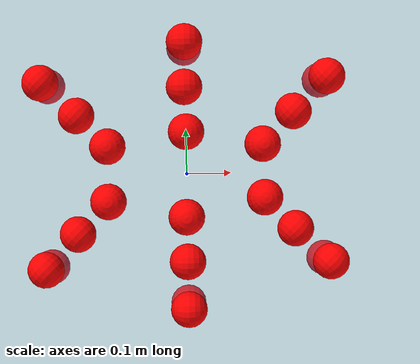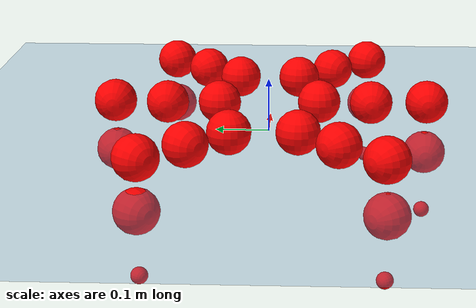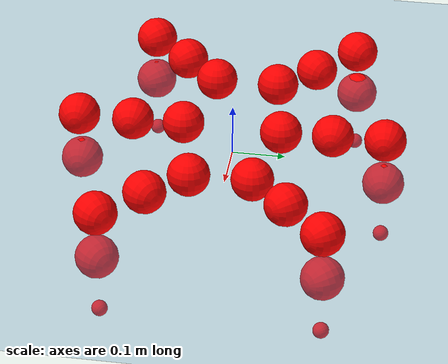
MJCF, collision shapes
<mujoco model="Golem">
  <compiler angle="radian" assetdir="assets" balanceinertia="true" inertiafromgeom="false"/>

  <option timestep="0.005" density="1.2" viscosity="2e-05"/>

  <size nkey="1"/>

  <visual>
    <quality shadowsize="8192"/>
    <map shadowclip="0.5"/>
  </visual>

  <default>
    <default class="/">
      <joint armature="0.01" damping="0.01" frictionloss="0.01"/>
      <geom contype="0" conaffinity="0" group="1" solref="-1000 -80"/>
      <site size="0.01 0.005 0.005" group="5"/>
      <general forcelimited="true" biastype="affine" gainprm="25" biasprm="0 -25 -0.5"/>
      <default class="visual">
        <geom type="mesh" group="2"/>
      </default>
      <default class="collision">
        <geom group="3"/>
      </default>
      <default class="foot">
        <geom size="0.01 0 0" condim="6" group="4" priority="1" solimp="0.015 1 0.01"/>
      </default>
      <default class="reward_collision_sphere">
        <geom group="5" rgba="1 0 0 1"/>
      </default>
    </default>
  </default>

  <asset>
    <texture type="skybox" colorspace="auto" name="//unnamed_texture_0" builtin="gradient" rgb1="0.95 0.95 0.95" rgb2="0.95 0.95 0.95" width="100" height="600"/>
    <texture type="2d" colorspace="auto" name="texplane" builtin="checker" rgb1="0.345 0.575 0.748" rgb2="0.345 0.575 0.748" markrgb="1 1 1" width="512" height="512"/>
    <material name="MatPlane" class="/" texture="texplane" texuniform="true" texrepeat="2 2" specular="0.9"/>
    <mesh name="body" class="/" file="body.stl" scale="0.001 0.001 0.001"/>
    <mesh name="coxa" class="/" file="coxa.stl" scale="0.001 0.001 0.001"/>
    <mesh name="femur" class="/" file="femur.stl" scale="0.001 0.001 0.001"/>
    <mesh name="tibia" class="/" file="tibia.stl" scale="0.001 0.001 0.001"/>
    <mesh name="tarsus" class="/" file="tarsus.stl" scale="0.001 0.001 0.001"/>
  </asset>

  <worldbody>
    <geom name="floor" class="/" size="100 100 0.125" type="plane" group="0" material="MatPlane"/>
    <light name="toplight_shadow" class="/" pos="0 0 5" dir="0.0990148 0.0990148 -0.990148" type="directional" ambient="0.04 0.04 0.04" diffuse="0.55 0.55 0.55" specular="0.12 0.12 0.12"/>
    <light name="toplight_fill" class="/" pos="0 0 5" dir="0.0990148 0.0990148 -0.990148" type="directional" castshadow="false" ambient="0.04 0.04 0.04" diffuse="0.3 0.3 0.3" specular="0.08 0.08 0.08"/>
    <body name="trunk" pos="-0.00179237 0.00200638 -0.00252423" quat="0.999999 0.000171671 0.000992294 0.000766606">
      <inertial pos="0.00055728 0.00227688 -0.00698584" quat="0.999947 -0.00279749 -0.00786665 0.00606016" mass="3.44676" diaginertia="0.0145797 0.00805189 0.00722752"/>
      <joint name="//unnamed_joint_0" type="free"/>
      <geom name="//unnamed_geom_1" class="/" pos="0 0 0.0602748" quat="1 0 0 0" type="mesh" rgba="0.9 0.9 0.9 1" mesh="body"/>
      <site name="imu" class="/" pos="0.144569 0.00844625 0.102568" size="0.00998076"/>
      <camera name="track" class="/" pos="0 -1.92278 0" quat="0.707107 0.707107 0 0" mode="trackcom"/>
      <camera name="ego_camera" class="/" pos="0.141836 0 0.0941794" quat="-0.5 -0.5 0.5 0.5"/>
      <body name="coxa_RR" pos="-0.193967 -0.0823531 0.0574563" quat="0.382599 0.000163121 0.000348766 -0.923915">
        <inertial pos="0.000216585 -0.00180233 0.000509775" quat="0.999991 -0.000703298 -0.00422238 0.000512117" mass="0.191568" diaginertia="0.0151382 0.00779566 0.00746357"/>
        <joint name="coxa_joint_RR" class="/" pos="0 0 0" axis="-0.0150018 0.0093441 -0.999844" range="-3.16567 3.13131" armature="0.0109546" damping="0" frictionloss="0.0101638"/>
        <geom name="//unnamed_geom_2" class="/" type="mesh" rgba="0.2 0.2 0.2 1" mesh="coxa"/>
        <geom name="//unnamed_geom_3" class="reward_collision_sphere" size="0.039923" pos="-0.0327313 0 0"/>
        <body name="femur_RR" pos="0.0642334 0.00144947 0.00108035" quat="0.500287 -0.500297 0.500025 0.499391">
          <inertial pos="0.0026023 -0.00107728 -0.00175469" quat="0.999994 0.00128267 0.00316089 -0.000675427" mass="0.195171" diaginertia="0.0152396 0.00819707 0.00767191"/>
          <joint name="femur_joint_RR" class="/" pos="0 0 0" axis="-0.00395124 0.00292018 -0.999988" range="-3.14354 3.19268" armature="0.00986085" damping="0" frictionloss="0.0112123"/>
          <geom name="//unnamed_geom_4" class="/" type="mesh" rgba="0.9 0.9 0.9 1" mesh="femur"/>
          <geom name="//unnamed_geom_5" class="reward_collision_sphere" size="0.039923"/>
          <body name="tibia_RR" pos="-0.00110399 -0.104537 0.00330437" quat="1.74959e-05 1 0.000122679 -0.000166376">
            <inertial pos="-0.00023756 0.00220369 -5.32586e-06" quat="0.999934 0.00902567 -0.0069486 -0.00152736" mass="0.199188" diaginertia="0.0154569 0.00836462 0.00768557"/>
            <joint name="tibia_joint_RR" class="/" pos="0 0 0" axis="-0.00605427 0.00261814 0.999978" range="-3.11513 3.08822" armature="0.0104806" damping="0.0178103" frictionloss="0.00865854"/>
            <geom name="//unnamed_geom_6" class="/" type="mesh" rgba="0.2 0.2 0.2 1" mesh="tibia"/>
            <geom name="//unnamed_geom_7" class="reward_collision_sphere" size="0.039923"/>
            <body name="tarsus_RR" pos="0.0978427 0.00264566 -0.00202284" quat="1 -0.000386179 -0.000107006 -0.000842627">
              <inertial pos="0.0654826 0.00130044 -0.00114011" quat="0.503314 0.496759 0.497462 0.502431" mass="0.193876" diaginertia="0.0146172 0.00815092 0.00730741"/>
              <joint name="tarsus_joint_RR" class="/" pos="0 0 0" axis="0.000306735 -9.51089e-05 1" range="-3.1642 3.10122" armature="0.00856921" damping="0.0116238" frictionloss="0.0100792"/>
              <geom name="//unnamed_geom_8" class="/" type="mesh" rgba="0.9 0.9 0.9 1" mesh="tarsus"/>
              <geom name="foot_1" class="foot" size="0.0107815" pos="0.122197 0 0" quat="0 -0.707107 0 0.707107"/>
              <geom name="//unnamed_geom_10" class="reward_collision_sphere" size="0.039923"/>
              <geom name="//unnamed_geom_11" class="reward_collision_sphere" size="0.0149711" pos="0.117287 0 0"/>
              <site name="foot_1" class="foot" pos="0.122197 0 0" quat="0 -0.707107 0 0.707107" size="0.00998076"/>
            </body>
          </body>
        </body>
      </body>
      <body name="coxa_RM" pos="-0.000291292 -0.129193 0.0611962" quat="0.70637 -0.00110459 -0.000836083 -0.707841">
        <inertial pos="0.00105115 -0.00080864 0.00061697" quat="1 5.33375e-05 -0.000127385 -0.000428276" mass="0.191275" diaginertia="0.0154641 0.00815374 0.00734753"/>
        <joint name="coxa_joint_RM" class="/" pos="0 0 0" axis="-0.00200714 -0.00788398 -0.999967" stiffness="0.00199522" range="-3.13182 3.15405" armature="0.0103478" damping="0.00368784" frictionloss="0.0113119"/>
        <geom name="//unnamed_geom_12" class="/" type="mesh" rgba="0.2 0.2 0.2 1" mesh="coxa"/>
        <geom name="//unnamed_geom_13" class="reward_collision_sphere" size="0.039923" pos="-0.0327313 0 0"/>
        <body name="femur_RM" pos="0.0647313 0.000566492 -0.00137283" quat="0.499483 -0.500077 0.50064 0.4998">
          <inertial pos="-0.00211422 -0.0018073 -0.00092499" quat="0.999909 0.00987717 8.50424e-05 -0.00913465" mass="0.202809" diaginertia="0.0159554 0.00833197 0.0077308"/>
          <joint name="femur_joint_RM" class="/" pos="0 0 0" axis="0.00249691 -0.00248387 -0.999994" stiffness="0.00438301" range="-3.1311 3.16863" armature="0.0112842" damping="0.0145894" frictionloss="0.00896385"/>
          <geom name="//unnamed_geom_14" class="/" type="mesh" rgba="0.9 0.9 0.9 1" mesh="femur"/>
          <geom name="//unnamed_geom_15" class="reward_collision_sphere" size="0.039923"/>
          <body name="tibia_RM" pos="-0.00167022 -0.103898 0.00082454" quat="0.000490372 1 0.000552886 0.000363208">
            <inertial pos="-0.00156051 -0.00321627 0.00057069" quat="0.999963 0.00403919 -0.00608123 0.00449479" mass="0.199529" diaginertia="0.0150854 0.00794155 0.00724719"/>
            <joint name="tibia_joint_RM" class="/" pos="0 0 0" axis="-0.00439271 0.00557329 0.999975" range="-3.14786 3.16849" armature="0.00863778" damping="0" frictionloss="0.0101205"/>
            <geom name="//unnamed_geom_16" class="/" type="mesh" rgba="0.2 0.2 0.2 1" mesh="tibia"/>
            <geom name="//unnamed_geom_17" class="reward_collision_sphere" size="0.039923"/>
            <body name="tarsus_RM" pos="0.0989874 -0.00139637 0.000309107" quat="1 -5.62173e-05 -0.000223628 9.55379e-05">
              <inertial pos="0.0647572 -0.000185363 0.00297846" quat="0.501687 0.499874 0.499255 0.499179" mass="0.190502" diaginertia="0.0154167 0.00803627 0.00712656"/>
              <joint name="tarsus_joint_RM" class="/" pos="0 0 0" axis="0.0129609 0.000754035 0.999916" range="-3.14714 3.14274" armature="0.010403" damping="0.00768663" frictionloss="0.00979798"/>
              <geom name="//unnamed_geom_18" class="/" type="mesh" rgba="0.9 0.9 0.9 1" mesh="tarsus"/>
              <geom name="foot_2" class="foot" size="0.0105304" pos="0.122197 0 0" quat="0 -0.707107 0 0.707107"/>
              <geom name="//unnamed_geom_20" class="reward_collision_sphere" size="0.039923"/>
              <geom name="//unnamed_geom_21" class="reward_collision_sphere" size="0.0149711" pos="0.117287 0 0"/>
              <site name="foot_2" class="foot" pos="0.122197 0 0" quat="0 -0.707107 0 0.707107" size="0.00998076"/>
            </body>
          </body>
        </body>
      </body>
      <body name="coxa_RF" pos="0.194714 -0.0801781 0.0594898" quat="0.923377 0.000682157 0.000105547 -0.383895">
        <inertial pos="-0.0022984 0.0016252 0.000389127" quat="0.999973 0.00279486 0.00396126 0.00548419" mass="0.196611" diaginertia="0.0147824 0.00813057 0.0073235"/>
        <joint name="coxa_joint_RF" class="/" pos="0 0 0" axis="0.00161272 -0.00211085 -0.999996" stiffness="0.00085893" range="-3.17827 3.18125" armature="0.0101721" damping="0.00228835" frictionloss="0.010334"/>
        <geom name="//unnamed_geom_22" class="/" type="mesh" rgba="0.2 0.2 0.2 1" mesh="coxa"/>
        <geom name="//unnamed_geom_23" class="reward_collision_sphere" size="0.039923" pos="-0.0327313 0 0"/>
        <body name="femur_RF" pos="0.0624888 -0.00227905 -0.000808865" quat="0.500023 -0.499973 0.500026 0.499978">
          <inertial pos="-0.000696299 -0.00160741 -0.000154895" quat="0.999912 -0.00683715 -0.0108409 -0.00341919" mass="0.196091" diaginertia="0.0145467 0.00787085 0.00694278"/>
          <joint name="femur_joint_RF" class="/" pos="0 0 0" axis="-0.0023326 0.0039929 -0.999989" stiffness="0.00341904" range="-3.14914 3.09283" armature="0.0101643" damping="0" frictionloss="0.00882774"/>
          <geom name="//unnamed_geom_24" class="/" type="mesh" rgba="0.9 0.9 0.9 1" mesh="femur"/>
          <geom name="//unnamed_geom_25" class="reward_collision_sphere" size="0.039923"/>
          <body name="tibia_RF" pos="0.000693969 -0.106106 0.00216866" quat="-0.000236193 1 0.000415193 -2.51793e-05">
            <inertial pos="-7.37787e-05 0.000355523 0.00277673" quat="0.999994 0.00280032 -0.00163983 -0.000966704" mass="0.193984" diaginertia="0.0144717 0.00806779 0.00717393"/>
            <joint name="tibia_joint_RF" class="/" pos="0 0 0" axis="-0.00534692 0.00979131 0.999938" range="-3.12828 3.17881" armature="0.00967821" damping="0.00787076" frictionloss="0.0109394"/>
            <geom name="//unnamed_geom_26" class="/" type="mesh" rgba="0.2 0.2 0.2 1" mesh="tibia"/>
            <geom name="//unnamed_geom_27" class="reward_collision_sphere" size="0.039923"/>
            <body name="tarsus_RF" pos="0.0956758 0.00062563 0.000959476" quat="1 -9.88858e-05 -0.000195504 5.01643e-05">
              <inertial pos="0.0633205 0.00225788 0.00247806" quat="0.498109 0.501318 0.501743 0.49882" mass="0.20485" diaginertia="0.0152582 0.00850631 0.00779983"/>
              <joint name="tarsus_joint_RF" class="/" pos="0 0 0" axis="0.0027208 0.00857591 0.99996" stiffness="0.028724" range="-3.13636 3.13016" armature="0.0111715" damping="0.0184446" frictionloss="0.0110045"/>
              <geom name="//unnamed_geom_28" class="/" type="mesh" rgba="0.9 0.9 0.9 1" mesh="tarsus"/>
              <geom name="foot_3" class="foot" size="0.0103367" pos="0.122197 0 0" quat="0 -0.707107 0 0.707107"/>
              <geom name="//unnamed_geom_30" class="reward_collision_sphere" size="0.039923"/>
              <geom name="//unnamed_geom_31" class="reward_collision_sphere" size="0.0149711" pos="0.117287 0 0"/>
              <site name="foot_3" class="foot" pos="0.122197 0 0" quat="0 -0.707107 0 0.707107" size="0.00998076"/>
            </body>
          </body>
        </body>
      </body>
      <body name="coxa_LR" pos="-0.193649 0.0847508 0.0561963" quat="0.383036 -0.000888259 -1.61204e-05 0.923733">
        <inertial pos="-0.000732064 -0.000354972 0.00153835" quat="0.999997 -0.000858098 -0.00169109 -0.00130532" mass="0.201706" diaginertia="0.0147278 0.00806251 0.0076099"/>
        <joint name="coxa_joint_LR" class="/" pos="0 0 0" axis="-0.0032213 -0.00799493 -0.999963" stiffness="0.00786761" range="-3.17705 3.18723" armature="0.0112133" damping="0" frictionloss="0.00998371"/>
        <geom name="//unnamed_geom_32" class="/" type="mesh" rgba="0.2 0.2 0.2 1" mesh="coxa"/>
        <geom name="//unnamed_geom_33" class="reward_collision_sphere" size="0.039923" pos="-0.0327313 0 0"/>
        <body name="femur_LR" pos="0.0631845 -0.00158114 0.000193611" quat="0.50042 -0.499139 0.499308 0.501129">
          <inertial pos="0.000948442 0.00344086 0.00142849" quat="1 1.48882e-05 0.000259972 -0.000204752" mass="0.19983" diaginertia="0.0157797 0.0082732 0.00761026"/>
          <joint name="femur_joint_LR" class="/" pos="0 0 0" axis="0.000332904 -0.000363811 1" range="-3.1621 3.14218" armature="0.009445" damping="0.0314597" frictionloss="0.0100902"/>
          <geom name="//unnamed_geom_34" class="/" type="mesh" rgba="0.9 0.9 0.9 1" mesh="femur"/>
          <geom name="//unnamed_geom_35" class="reward_collision_sphere" size="0.039923"/>
          <body name="tibia_LR" pos="-0.00380749 -0.106048 0.00279383" quat="-0.000317632 0.999999 -0.000654939 0.000691741">
            <inertial pos="0.00194603 -0.000284725 -0.00145022" quat="0.999994 0.000152228 0.00155745 0.00306917" mass="0.208446" diaginertia="0.0159206 0.00827468 0.00760659"/>
            <joint name="tibia_joint_LR" class="/" pos="0 0 0" axis="0.0145174 0.00586086 -0.999877" stiffness="0.00743251" range="-3.10014 3.11308" armature="0.0113461" damping="0" frictionloss="0.00994213"/>
            <geom name="//unnamed_geom_36" class="/" type="mesh" rgba="0.2 0.2 0.2 1" mesh="tibia"/>
            <geom name="//unnamed_geom_37" class="reward_collision_sphere" size="0.039923"/>
            <body name="tarsus_LR" pos="0.0947363 0.000404111 0.00310752" quat="1 -8.87026e-05 -7.37043e-05 0.000368812">
              <inertial pos="0.0610371 0.00224521 0.00120327" quat="0.501282 0.509993 0.494092 0.494466" mass="0.195445" diaginertia="0.0157862 0.00791028 0.00742465"/>
              <joint name="tarsus_joint_LR" class="/" pos="0 0 0" axis="0.00500224 -0.00415548 -0.999979" stiffness="0.00481268" range="-3.19081 3.10356" armature="0.0095213" damping="0.0122052" frictionloss="0.00912131"/>
              <geom name="//unnamed_geom_38" class="/" type="mesh" rgba="0.9 0.9 0.9 1" mesh="tarsus"/>
              <geom name="foot_4" class="foot" size="0.00880531" pos="0.122197 0 0" quat="0.707107 0 -0.707107 0"/>
              <geom name="//unnamed_geom_40" class="reward_collision_sphere" size="0.039923"/>
              <geom name="//unnamed_geom_41" class="reward_collision_sphere" size="0.0149711" pos="0.117287 0 0"/>
              <site name="foot_4" class="foot" pos="0.122197 0 0" quat="0.707107 0 -0.707107 0" size="0.00998076"/>
            </body>
          </body>
        </body>
      </body>
      <body name="coxa_LM" pos="0.00249211 0.12319 0.0579447" quat="0.707216 0.000217096 0.000144394 0.706997">
        <inertial pos="-0.00224893 -0.000828832 0.00287206" quat="0.999993 0.00353053 -0.000111663 -0.00156775" mass="0.192398" diaginertia="0.0154575 0.00790037 0.00715712"/>
        <joint name="coxa_joint_LM" class="/" pos="0 0 0" axis="0.00635774 -0.0138538 -0.999884" range="-3.15309 3.18742" armature="0.011246" damping="0.00430443" frictionloss="0.0107943"/>
        <geom name="//unnamed_geom_42" class="/" type="mesh" rgba="0.2 0.2 0.2 1" mesh="coxa"/>
        <geom name="//unnamed_geom_43" class="reward_collision_sphere" size="0.039923" pos="-0.0327313 0 0"/>
        <body name="femur_LM" pos="0.06528 0.00218963 -4.27856e-05" quat="0.499766 -0.500212 0.500018 0.500003">
          <inertial pos="0.000880306 -0.00198357 -0.00265964" quat="0.999997 -0.000817569 0.000663326 0.00219018" mass="0.206135" diaginertia="0.0157835 0.00802684 0.00719686"/>
          <joint name="femur_joint_LM" class="/" pos="0 0 0" axis="0.00125827 -0.000348366 0.999999" stiffness="0.0085417" range="-3.08662 3.15126" armature="0.00905585" damping="0.0140413" frictionloss="0.00945957"/>
          <geom name="//unnamed_geom_44" class="/" type="mesh" rgba="0.9 0.9 0.9 1" mesh="femur"/>
          <geom name="//unnamed_geom_45" class="reward_collision_sphere" size="0.039923"/>
          <body name="tibia_LM" pos="-0.00113321 -0.0988785 -0.00229231" quat="-4.60005e-06 1 9.28876e-05 6.09929e-05">
            <inertial pos="0.00154101 -0.000802914 0.000586575" quat="0.999984 -0.00274443 0.00483723 -0.000738351" mass="0.194596" diaginertia="0.0151908 0.00777558 0.00701499"/>
            <joint name="tibia_joint_LM" class="/" pos="0 0 0" axis="-0.00107038 0.0107736 -0.999941" stiffness="0.0123968" range="-3.12833 3.14161" armature="0.010332" damping="0.0107178" frictionloss="0.0099702"/>
            <geom name="//unnamed_geom_46" class="/" type="mesh" rgba="0.2 0.2 0.2 1" mesh="tibia"/>
            <geom name="//unnamed_geom_47" class="reward_collision_sphere" size="0.039923"/>
            <body name="tarsus_LM" pos="0.096435 -0.00019048 -0.0007809" quat="1 -0.000158896 7.75837e-05 -0.000318026">
              <inertial pos="0.0665043 -3.15086e-05 0.00208248" quat="0.497834 0.4968 0.500615 0.504714" mass="0.194589" diaginertia="0.0147015 0.00784954 0.0073069"/>
              <joint name="tarsus_joint_LM" class="/" pos="0 0 0" axis="0.00635953 -0.0122483 -0.999905" range="-3.12325 3.12841" armature="0.00974538" damping="0.014083" frictionloss="0.0094527"/>
              <geom name="//unnamed_geom_48" class="/" type="mesh" rgba="0.9 0.9 0.9 1" mesh="tarsus"/>
              <geom name="foot_5" class="foot" size="0.00995474" pos="0.122197 0 0" quat="0.707107 0 -0.707107 0"/>
              <geom name="//unnamed_geom_50" class="reward_collision_sphere" size="0.039923"/>
              <geom name="//unnamed_geom_51" class="reward_collision_sphere" size="0.0149711" pos="0.117287 0 0"/>
              <site name="foot_5" class="foot" pos="0.122197 0 0" quat="0.707107 0 -0.707107 0" size="0.00998076"/>
            </body>
          </body>
        </body>
      </body>
      <body name="coxa_LF" pos="0.192545 0.0832638 0.0599233" quat="0.923913 -0.0003155 -0.00107897 0.3826">
        <inertial pos="-0.001011 0.000193234 -0.000555296" quat="0.999996 -0.0017798 -0.00234425 -2.8563e-05" mass="0.195818" diaginertia="0.0157492 0.00810186 0.00731524"/>
        <joint name="coxa_joint_LF" class="/" pos="0 0 0" axis="-0.000202621 8.33987e-05 -1" stiffness="0.00435273" range="-3.17578 3.13903" armature="0.00995453" damping="0.00445289" frictionloss="0.00835564"/>
        <geom name="//unnamed_geom_52" class="/" type="mesh" rgba="0.2 0.2 0.2 1" mesh="coxa"/>
        <geom name="//unnamed_geom_53" class="reward_collision_sphere" size="0.039923" pos="-0.0327313 0 0"/>
        <body name="femur_LF" pos="0.0652029 0.00121946 -0.00119362" quat="0.49931 -0.500611 0.500064 0.500014">
          <inertial pos="0.00293839 0.00131229 -0.00336641" quat="0.999998 0.00080656 0.00192619 -0.00041649" mass="0.192404" diaginertia="0.0151529 0.00831284 0.0073249"/>
          <joint name="femur_joint_LF" class="/" pos="0 0 0" axis="0.000116999 0.00192738 0.999998" stiffness="0.00782231" range="-3.14694 3.1387" armature="0.010805" damping="0.0179776" frictionloss="0.0112168"/>
          <geom name="//unnamed_geom_54" class="/" type="mesh" rgba="0.9 0.9 0.9 1" mesh="femur"/>
          <geom name="//unnamed_geom_55" class="reward_collision_sphere" size="0.039923"/>
          <body name="tibia_LF" pos="0.00266001 -0.106623 -0.000750266" quat="-0.000416208 1 -0.000415639 0.00058701">
            <inertial pos="-0.00234576 0.00294547 -0.00104807" quat="1 -0.000635443 -0.000320085 1.60979e-05" mass="0.214324" diaginertia="0.0166224 0.00860945 0.00799266"/>
            <joint name="tibia_joint_LF" class="/" pos="0 0 0" axis="0.000157555 -0.0015955 -0.999999" range="-3.12293 3.16414" armature="0.0105479" damping="0.00203466" frictionloss="0.00959848"/>
            <geom name="//unnamed_geom_56" class="/" type="mesh" rgba="0.2 0.2 0.2 1" mesh="tibia"/>
            <geom name="//unnamed_geom_57" class="reward_collision_sphere" size="0.039923"/>
            <body name="tarsus_LF" pos="0.0969503 -0.000114942 -0.00240072" quat="1 0.000352126 -0.000689758 0.000512109">
              <inertial pos="0.0678354 0.00216805 -0.00194835" quat="0.503843 0.494658 0.502369 0.499081" mass="0.205139" diaginertia="0.0165533 0.00850804 0.00792068"/>
              <joint name="tarsus_joint_LF" class="/" pos="0 0 0" axis="-0.00112675 0.0139251 -0.999902" stiffness="0.00157881" range="-3.09581 3.13474" armature="0.0101069" damping="0.0198796" frictionloss="0.0112634"/>
              <geom name="//unnamed_geom_58" class="/" type="mesh" rgba="0.9 0.9 0.9 1" mesh="tarsus"/>
              <geom name="foot_6" class="foot" size="0.0109824" pos="0.122197 0 0" quat="0.707107 0 -0.707107 0"/>
              <geom name="//unnamed_geom_60" class="reward_collision_sphere" size="0.039923"/>
              <geom name="//unnamed_geom_61" class="reward_collision_sphere" size="0.0149711" pos="0.117287 0 0"/>
              <site name="foot_6" class="foot" pos="0.122197 0 0" quat="0.707107 0 -0.707107 0" size="0.00998076"/>
            </body>
          </body>
        </body>
      </body>
    </body>
  </worldbody>

  <contact>
    <pair class="/" geom1="floor" geom2="foot_1" name="//unnamed_contact_0"/>
    <pair class="/" geom1="floor" geom2="foot_2" name="//unnamed_contact_1"/>
    <pair class="/" geom1="floor" geom2="foot_3" name="//unnamed_contact_2"/>
    <pair class="/" geom1="floor" geom2="foot_4" name="//unnamed_contact_3"/>
    <pair class="/" geom1="floor" geom2="foot_5" name="//unnamed_contact_4"/>
    <pair class="/" geom1="floor" geom2="foot_6" name="//unnamed_contact_5"/>
  </contact>

  <actuator>
    <general name="coxa_joint_RR" class="/" joint="coxa_joint_RR" forcerange="-6.55543 6.55543" gainprm="24.0909" biasprm="0 -24.0909 -0.468134"/>
    <general name="femur_joint_RR" class="/" joint="femur_joint_RR" forcerange="-7.07083 7.07083" gainprm="24.0909" biasprm="0 -24.0909 -0.468134"/>
    <general name="tibia_joint_RR" class="/" joint="tibia_joint_RR" forcerange="-6.56277 6.56277" gainprm="24.0909" biasprm="0 -24.0909 -0.468134"/>
    <general name="tarsus_joint_RR" class="/" joint="tarsus_joint_RR" forcerange="-7.05935 7.05935" gainprm="24.0909" biasprm="0 -24.0909 -0.468134"/>
    <general name="coxa_joint_RM" class="/" joint="coxa_joint_RM" forcerange="-7.53885 7.53885" gainprm="24.0909" biasprm="0 -24.0909 -0.468134"/>
    <general name="femur_joint_RM" class="/" joint="femur_joint_RM" forcerange="-7.35078 7.35078" gainprm="24.0909" biasprm="0 -24.0909 -0.468134"/>
    <general name="tibia_joint_RM" class="/" joint="tibia_joint_RM" forcerange="-7.0733 7.0733" gainprm="24.0909" biasprm="0 -24.0909 -0.468134"/>
    <general name="tarsus_joint_RM" class="/" joint="tarsus_joint_RM" forcerange="-6.68571 6.68571" gainprm="24.0909" biasprm="0 -24.0909 -0.468134"/>
    <general name="coxa_joint_RF" class="/" joint="coxa_joint_RF" forcerange="-7.84487 7.84487" gainprm="24.0909" biasprm="0 -24.0909 -0.468134"/>
    <general name="femur_joint_RF" class="/" joint="femur_joint_RF" forcerange="-7.75607 7.75607" gainprm="24.0909" biasprm="0 -24.0909 -0.468134"/>
    <general name="tibia_joint_RF" class="/" joint="tibia_joint_RF" forcerange="-7.66531 7.66531" gainprm="24.0909" biasprm="0 -24.0909 -0.468134"/>
    <general name="tarsus_joint_RF" class="/" joint="tarsus_joint_RF" forcerange="-7.00448 7.00448" gainprm="24.0909" biasprm="0 -24.0909 -0.468134"/>
    <general name="coxa_joint_LR" class="/" joint="coxa_joint_LR" forcerange="-6.8145 6.8145" gainprm="24.0909" biasprm="0 -24.0909 -0.468134"/>
    <general name="femur_joint_LR" class="/" joint="femur_joint_LR" forcerange="-7.15136 7.15136" gainprm="24.0909" biasprm="0 -24.0909 -0.468134"/>
    <general name="tibia_joint_LR" class="/" joint="tibia_joint_LR" forcerange="-7.3586 7.3586" gainprm="24.0909" biasprm="0 -24.0909 -0.468134"/>
    <general name="tarsus_joint_LR" class="/" joint="tarsus_joint_LR" forcerange="-6.82565 6.82565" gainprm="24.0909" biasprm="0 -24.0909 -0.468134"/>
    <general name="coxa_joint_LM" class="/" joint="coxa_joint_LM" forcerange="-6.74867 6.74867" gainprm="24.0909" biasprm="0 -24.0909 -0.468134"/>
    <general name="femur_joint_LM" class="/" joint="femur_joint_LM" forcerange="-6.90368 6.90368" gainprm="24.0909" biasprm="0 -24.0909 -0.468134"/>
    <general name="tibia_joint_LM" class="/" joint="tibia_joint_LM" forcerange="-6.56518 6.56518" gainprm="24.0909" biasprm="0 -24.0909 -0.468134"/>
    <general name="tarsus_joint_LM" class="/" joint="tarsus_joint_LM" forcerange="-6.68058 6.68058" gainprm="24.0909" biasprm="0 -24.0909 -0.468134"/>
    <general name="coxa_joint_LF" class="/" joint="coxa_joint_LF" forcerange="-7.47713 7.47713" gainprm="24.0909" biasprm="0 -24.0909 -0.468134"/>
    <general name="femur_joint_LF" class="/" joint="femur_joint_LF" forcerange="-6.81731 6.81731" gainprm="24.0909" biasprm="0 -24.0909 -0.468134"/>
    <general name="tibia_joint_LF" class="/" joint="tibia_joint_LF" forcerange="-7.76439 7.76439" gainprm="24.0909" biasprm="0 -24.0909 -0.468134"/>
    <general name="tarsus_joint_LF" class="/" joint="tarsus_joint_LF" forcerange="-6.55142 6.55142" gainprm="24.0909" biasprm="0 -24.0909 -0.468134"/>
  </actuator>

  <sensor>
    <gyro site="imu" name="imu_angular_velocity"/>
    <velocimeter site="imu" name="imu_linear_velocity"/>
    <framelinvel objtype="site" objname="foot_1" name="foot_1_global_linear_velocity"/>
    <framelinvel objtype="site" objname="foot_2" name="foot_2_global_linear_velocity"/>
    <framelinvel objtype="site" objname="foot_3" name="foot_3_global_linear_velocity"/>
    <framelinvel objtype="site" objname="foot_4" name="foot_4_global_linear_velocity"/>
    <framelinvel objtype="site" objname="foot_5" name="foot_5_global_linear_velocity"/>
    <framelinvel objtype="site" objname="foot_6" name="foot_6_global_linear_velocity"/>
  </sensor>

  <keyframe>
    <key name="home" qpos="0 0 0.1457 1 0 0 0 0 0 0 0 0 0 0 0 0 0 0 0 0 0 0 0 0 0 0 0 0 0 0 0"/>
  </keyframe>
</mujoco>
